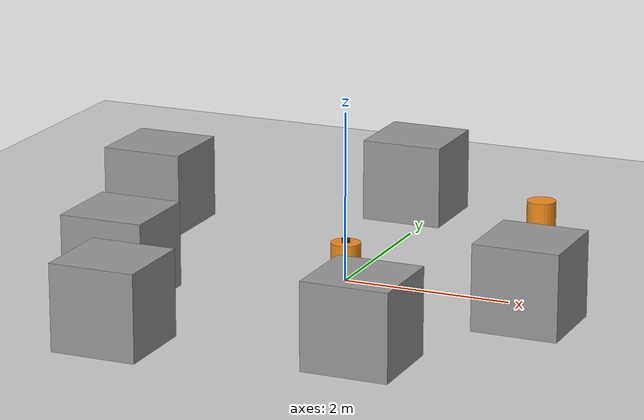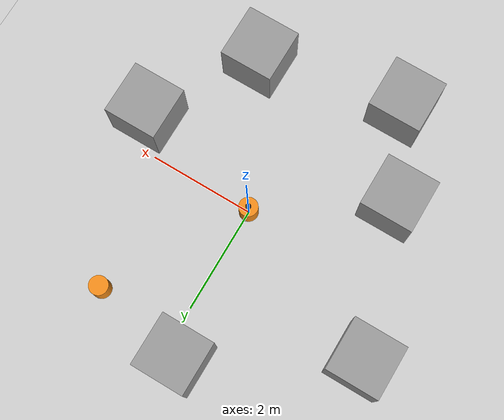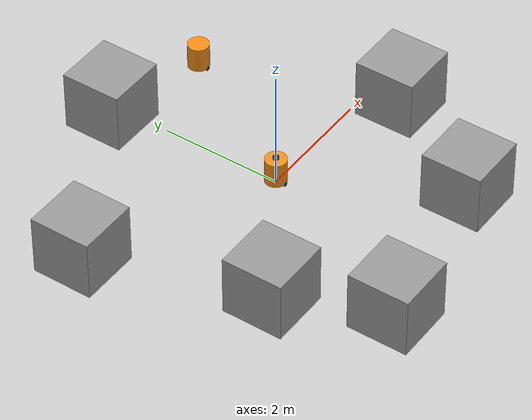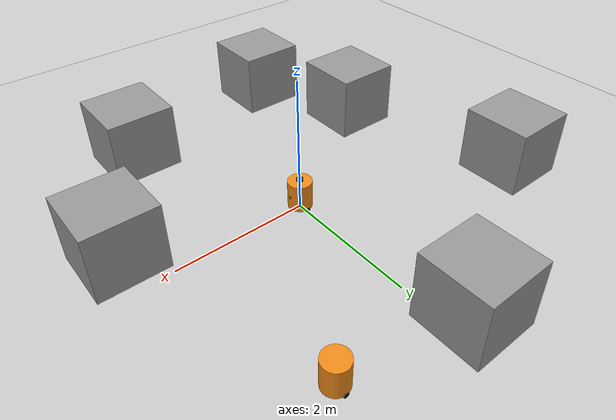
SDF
<sdf version="1.7">
 <world name="default">
  <light name="sun" type="directional">
   <pose>0 0 10 0 -0 0</pose>
   <diffuse>0.8 0.8 0.8 1</diffuse>
   <specular>0.2 0.2 0.2 1</specular>
   <attenuation>
    <range>1000</range>
    <constant>0.9</constant>
    <linear>0.01</linear>
    <quadratic>0.001</quadratic>
   </attenuation>
   <direction>-0.5 0.1 -0.9</direction>
   <spot><inner_angle>0</inner_angle><outer_angle>0</outer_angle><falloff>0</falloff></spot>
  </light>
  <model name="ground_plane">
   <static>1</static>
   <link name="link">
    <collision name="collision">
     <geometry><plane><normal>0 0 1</normal><size>100 100</size></plane></geometry>
     <surface>
      <contact><collide_bitmask>65535</collide_bitmask></contact>
      <friction><ode><mu>100</mu><mu2>50</mu2></ode></friction>
     </surface>
    </collision>
    <visual name="visual">
     <cast_shadows>0</cast_shadows>
     <geometry><plane><normal>0 0 1</normal><size>100 100</size></plane></geometry>
     <material>
      <script><uri>file://media/materials/scripts/gazebo.material</uri><name>Gazebo/Grey</name></script>
     </material>
    </visual>
   </link>
  </model>
  <gravity>0 0 -9.8</gravity>
  <magnetic_field>6e-06 2.3e-05 -4.2e-05</magnetic_field>
  <atmosphere type="adiabatic"/>
  <physics type="ode">
   <max_step_size>0.001</max_step_size>
   <real_time_factor>1</real_time_factor>
   <real_time_update_rate>1000</real_time_update_rate>
  </physics>
  <scene><ambient>0.4 0.4 0.4 1</ambient><background>0.7 0.7 0.7 1</background><shadows>1</shadows></scene>
  <spherical_coordinates>
   <surface_model>EARTH_WGS84</surface_model>
   <latitude_deg>0</latitude_deg>
   <longitude_deg>0</longitude_deg>
   <elevation>0</elevation>
   <heading_deg>0</heading_deg>
  </spherical_coordinates>
  <model name="tb2_1">
   <link name="base_link">
    <inertial>
     <pose>0 0 -0.02375 0 -0 0</pose>
     <mass>0.8</mass>
     <inertia>
      <ixx>0.0251287</ixx>
      <ixy>0</ixy>
      <ixz>0</ixz>
      <iyy>0.0280087</iyy>
      <iyz>0</iyz>
      <izz>0.0109652</izz>
     </inertia>
    </inertial>
    <collision name="base_link_fixed_joint_lump__chassis_collision">
     <geometry><cylinder><length>0.42</length><radius>0.177</radius></cylinder></geometry>
    </collision>
    <collision name="base_link_fixed_joint_lump__caster_wheel_backward_collision_1">
     <pose>-0.12 0 -0.21 0 -0 0</pose>
     <geometry><sphere><radius>0.04</radius></sphere></geometry>
     <surface><friction><ode><mu>0.001</mu><mu2>0.001</mu2></ode></friction></surface>
    </collision>
    <collision name="base_link_fixed_joint_lump__caster_wheel_forward_collision_2">
     <pose>0.12 0 -0.21 0 -0 0</pose>
     <geometry><sphere><radius>0.04</radius></sphere></geometry>
     <surface><friction><ode><mu>0.001</mu><mu2>0.001</mu2></ode></friction></surface>
    </collision>
    <collision name="base_link_fixed_joint_lump__laser_frame_collision_3">
     <pose>0 0 0.23 0 -0 0</pose>
     <geometry><cylinder><length>0.04</length><radius>0.05</radius></cylinder></geometry>
    </collision>
    <visual name="base_link_fixed_joint_lump__chassis_visual">
     <geometry><cylinder><length>0.42</length><radius>0.177</radius></cylinder></geometry>
     <material>
      <script><name>Gazebo/Orange</name><uri>file://media/materials/scripts/gazebo.material</uri></script>
     </material>
    </visual>
    <visual name="base_link_fixed_joint_lump__camera_link_visual_1">
     <pose>0.127 0 0 0 -0 0</pose>
     <geometry><box><size>0.1 0.04 0.04</size></box></geometry>
     <material>
      <script><name>Gazebo/Black</name><uri>file://media/materials/scripts/gazebo.material</uri></script>
     </material>
    </visual>
    <visual name="base_link_fixed_joint_lump__caster_wheel_backward_visual_2">
     <pose>-0.12 0 -0.21 0 -0 0</pose>
     <geometry><sphere><radius>0.04</radius></sphere></geometry>
     <material>
      <script><name>Gazebo/Black</name><uri>file://media/materials/scripts/gazebo.material</uri></script>
     </material>
    </visual>
    <visual name="base_link_fixed_joint_lump__caster_wheel_forward_visual_3">
     <pose>0.12 0 -0.21 0 -0 0</pose>
     <geometry><sphere><radius>0.04</radius></sphere></geometry>
     <material>
      <script><name>Gazebo/Black</name><uri>file://media/materials/scripts/gazebo.material</uri></script>
     </material>
    </visual>
    <visual name="base_link_fixed_joint_lump__laser_frame_visual_4">
     <pose>0 0 0.23 0 -0 0</pose>
     <geometry><cylinder><length>0.04</length><radius>0.05</radius></cylinder></geometry>
     <material>
      <script><name>Gazebo/Black</name><uri>file://media/materials/scripts/gazebo.material</uri></script>
     </material>
    </visual>
    <sensor name="camera" type="depth">
     <visualize>1</visualize>
     <update_rate>10</update_rate>
     <camera>
      <horizontal_fov>1.089</horizontal_fov>
      <image><format>B8G8R8</format><width>640</width><height>480</height></image>
      <clip><near>0.05</near><far>8</far></clip>
     </camera>
     <plugin name="camera_controller" filename="libgazebo_ros_camera.so">
      <frame_name>camera_link_optical</frame_name>
      <min_depth>0.1</min_depth>
      <max_depth>100.0</max_depth>
     </plugin>
     <pose>0.127 0 0 0 -0 0</pose>
    </sensor>
    <sensor name="laser" type="ray">
     <visualize>0</visualize>
     <update_rate>10</update_rate>
     <ray>
      <scan>
       <horizontal>
        <samples>360</samples>
        <min_angle>-3.14</min_angle>
        <max_angle>3.14</max_angle>
        <resolution>1</resolution>
       </horizontal>
       <vertical><samples>1</samples><min_angle>0</min_angle><max_angle>0</max_angle></vertical>
      </scan>
      <range><min>0.3</min><max>12</max></range>
     </ray>
     <plugin name="laser_controller" filename="libgazebo_ros_ray_sensor.so">
      <ros><argument>~/out:=scan</argument></ros>
      <output_type>sensor_msgs/LaserScan</output_type>
      <frame_name>laser_frame</frame_name>
     </plugin>
     <pose>0 0 0.23 0 -0 0</pose>
    </sensor>
   </link>
   <joint name="left_wheel_joint" type="revolute">
    <pose relative_to="base_link">0 0.157 -0.21 -1.5708 0 0</pose>
    <parent>base_link</parent>
    <child>left_wheel</child>
    <axis>
     <xyz>0 0 1</xyz>
     <limit><lower>-1e+16</lower><upper>1e+16</upper></limit>
     <dynamics><spring_reference>0</spring_reference><spring_stiffness>0</spring_stiffness></dynamics>
    </axis>
   </joint>
   <link name="left_wheel">
    <pose relative_to="left_wheel_joint">0 0 0 0 -0 0</pose>
    <inertial>
     <mass>0.1</mass>
     <inertia>
      <ixx>5.33333e-05</ixx>
      <ixy>0</ixy>
      <ixz>0</ixz>
      <iyy>5.33333e-05</iyy>
      <iyz>0</iyz>
      <izz>8e-05</izz>
     </inertia>
    </inertial>
    <collision name="left_wheel_collision">
     <geometry><cylinder><length>0.04</length><radius>0.04</radius></cylinder></geometry>
    </collision>
    <visual name="left_wheel_visual">
     <geometry><cylinder><length>0.04</length><radius>0.04</radius></cylinder></geometry>
     <material>
      <script><name>Gazebo/Black</name><uri>file://media/materials/scripts/gazebo.material</uri></script>
     </material>
    </visual>
   </link>
   <joint name="right_wheel_joint" type="revolute">
    <pose relative_to="base_link">0 -0.157 -0.21 1.5708 -0 0</pose>
    <parent>base_link</parent>
    <child>right_wheel</child>
    <axis>
     <xyz>0 0 -1</xyz>
     <limit><lower>-1e+16</lower><upper>1e+16</upper></limit>
     <dynamics><spring_reference>0</spring_reference><spring_stiffness>0</spring_stiffness></dynamics>
    </axis>
   </joint>
   <link name="right_wheel">
    <pose relative_to="right_wheel_joint">0 0 0 0 -0 0</pose>
    <inertial>
     <mass>0.1</mass>
     <inertia>
      <ixx>5.33333e-05</ixx>
      <ixy>0</ixy>
      <ixz>0</ixz>
      <iyy>5.33333e-05</iyy>
      <iyz>0</iyz>
      <izz>8e-05</izz>
     </inertia>
    </inertial>
    <collision name="right_wheel_collision">
     <geometry><cylinder><length>0.04</length><radius>0.04</radius></cylinder></geometry>
    </collision>
    <visual name="right_wheel_visual">
     <geometry><cylinder><length>0.04</length><radius>0.04</radius></cylinder></geometry>
     <material>
      <script><name>Gazebo/Black</name><uri>file://media/materials/scripts/gazebo.material</uri></script>
     </material>
    </visual>
   </link>
   <plugin name="diff_drive_master" filename="libgazebo_ros_diff_drive.so">
    <ros><namespace>/master</namespace></ros>
    <left_joint>left_wheel_joint</left_joint>
    <right_joint>right_wheel_joint</right_joint>
    <wheel_separation>0.314</wheel_separation>
    <wheel_diameter>0.08</wheel_diameter>
    <max_wheel_torque>200</max_wheel_torque>
    <max_wheel_acceleration>10.0</max_wheel_acceleration>
    <odometry_frame>odom</odometry_frame>
    <robot_base_frame>base_link</robot_base_frame>
    <publish_odom>1</publish_odom>
    <publish_odom_tf>1</publish_odom_tf>
    <publish_wheel_tf>1</publish_wheel_tf>
   </plugin>
   <frame name="base_footprint_joint" attached_to="base_link"/>
   <frame name="base_footprint" attached_to="base_footprint_joint"/>
   <frame name="camera_optical_joint" attached_to="camera_link"><pose>0 0 0 -1.5708 -0 -1.5708</pose></frame>
   <frame name="camera_link_optical" attached_to="camera_optical_joint"/>
   <frame name="camera_joint" attached_to="chassis"><pose>0.127 0 0 0 -0 0</pose></frame>
   <frame name="camera_link" attached_to="camera_joint"/>
   <frame name="caster_wheel_backward_joint" attached_to="chassis"><pose>-0.12 0 -0.21 0 -0 0</pose></frame>
   <frame name="caster_wheel_backward" attached_to="caster_wheel_backward_joint"/>
   <frame name="caster_wheel_forward_joint" attached_to="chassis"><pose>0.12 0 -0.21 0 -0 0</pose></frame>
   <frame name="caster_wheel_forward" attached_to="caster_wheel_forward_joint"/>
   <frame name="laser_joint" attached_to="chassis"><pose>0 0 0.23 0 -0 0</pose></frame>
   <frame name="laser_frame" attached_to="laser_joint"/>
   <frame name="chassis_joint" attached_to="base_link"/>
   <frame name="chassis" attached_to="chassis_joint"/>
   <pose>0.000745 0.000119 0.25 0 -0 4.7e-05</pose>
  </model>
  <model name="tb2_2">
   <link name="base_link_slave">
    <inertial>
     <pose>0 0 -0.06 0 -0 0</pose>
     <mass>0.7</mass>
     <inertia>
      <ixx>0.0176941</ixx>
      <ixy>0</ixy>
      <ixz>0</ixz>
      <iyy>0.0205741</iyy>
      <iyz>0</iyz>
      <izz>0.0108402</izz>
     </inertia>
    </inertial>
    <collision name="base_link_slave_fixed_joint_lump__chassis_slave_collision">
     <geometry><cylinder><length>0.42</length><radius>0.177</radius></cylinder></geometry>
    </collision>
    <collision name="base_link_slave_fixed_joint_lump__caster_wheel_backward_slave_collision_1">
     <pose>-0.12 0 -0.21 0 -0 0</pose>
     <geometry><sphere><radius>0.04</radius></sphere></geometry>
     <surface><friction><ode><mu>0.001</mu><mu2>0.001</mu2></ode></friction></surface>
    </collision>
    <collision name="base_link_slave_fixed_joint_lump__caster_wheel_forward_slave_collision_2">
     <pose>0.12 0 -0.21 0 -0 0</pose>
     <geometry><sphere><radius>0.04</radius></sphere></geometry>
     <surface><friction><ode><mu>0.001</mu><mu2>0.001</mu2></ode></friction></surface>
    </collision>
    <visual name="base_link_slave_fixed_joint_lump__chassis_slave_visual">
     <geometry><cylinder><length>0.42</length><radius>0.177</radius></cylinder></geometry>
     <material>
      <script><name>Gazebo/Orange</name><uri>file://media/materials/scripts/gazebo.material</uri></script>
     </material>
    </visual>
    <visual name="base_link_slave_fixed_joint_lump__caster_wheel_backward_slave_visual_1">
     <pose>-0.12 0 -0.21 0 -0 0</pose>
     <geometry><sphere><radius>0.04</radius></sphere></geometry>
     <material>
      <script><name>Gazebo/Black</name><uri>file://media/materials/scripts/gazebo.material</uri></script>
     </material>
    </visual>
    <visual name="base_link_slave_fixed_joint_lump__caster_wheel_forward_slave_visual_2">
     <pose>0.12 0 -0.21 0 -0 0</pose>
     <geometry><sphere><radius>0.04</radius></sphere></geometry>
     <material>
      <script><name>Gazebo/Black</name><uri>file://media/materials/scripts/gazebo.material</uri></script>
     </material>
    </visual>
   </link>
   <joint name="left_wheel_joint_slave" type="revolute">
    <pose relative_to="base_link_slave">0 0.157 -0.21 -1.5708 0 0</pose>
    <parent>base_link_slave</parent>
    <child>left_wheel_slave</child>
    <axis>
     <xyz>0 0 1</xyz>
     <limit><lower>-1e+16</lower><upper>1e+16</upper></limit>
     <dynamics><spring_reference>0</spring_reference><spring_stiffness>0</spring_stiffness></dynamics>
    </axis>
   </joint>
   <link name="left_wheel_slave">
    <pose relative_to="left_wheel_joint_slave">0 0 0 0 -0 0</pose>
    <inertial>
     <mass>0.1</mass>
     <inertia>
      <ixx>5.33333e-05</ixx>
      <ixy>0</ixy>
      <ixz>0</ixz>
      <iyy>5.33333e-05</iyy>
      <iyz>0</iyz>
      <izz>8e-05</izz>
     </inertia>
    </inertial>
    <collision name="left_wheel_slave_collision">
     <geometry><cylinder><length>0.04</length><radius>0.04</radius></cylinder></geometry>
    </collision>
    <visual name="left_wheel_slave_visual">
     <geometry><cylinder><length>0.04</length><radius>0.04</radius></cylinder></geometry>
     <material>
      <script><name>Gazebo/Black</name><uri>file://media/materials/scripts/gazebo.material</uri></script>
     </material>
    </visual>
   </link>
   <joint name="right_wheel_joint_slave" type="revolute">
    <pose relative_to="base_link_slave">0 -0.157 -0.21 1.5708 -0 0</pose>
    <parent>base_link_slave</parent>
    <child>right_wheel_slave</child>
    <axis>
     <xyz>0 0 -1</xyz>
     <limit><lower>-1e+16</lower><upper>1e+16</upper></limit>
     <dynamics><spring_reference>0</spring_reference><spring_stiffness>0</spring_stiffness></dynamics>
    </axis>
   </joint>
   <link name="right_wheel_slave">
    <pose relative_to="right_wheel_joint_slave">0 0 0 0 -0 0</pose>
    <inertial>
     <mass>0.1</mass>
     <inertia>
      <ixx>5.33333e-05</ixx>
      <ixy>0</ixy>
      <ixz>0</ixz>
      <iyy>5.33333e-05</iyy>
      <iyz>0</iyz>
      <izz>8e-05</izz>
     </inertia>
    </inertial>
    <collision name="right_wheel_slave_collision">
     <geometry><cylinder><length>0.04</length><radius>0.04</radius></cylinder></geometry>
    </collision>
    <visual name="right_wheel_slave_visual">
     <geometry><cylinder><length>0.04</length><radius>0.04</radius></cylinder></geometry>
     <material>
      <script><name>Gazebo/Black</name><uri>file://media/materials/scripts/gazebo.material</uri></script>
     </material>
    </visual>
   </link>
   <plugin name="diff_drive_slave" filename="libgazebo_ros_diff_drive.so">
    <ros><namespace>/slave</namespace></ros>
    <left_joint>left_wheel_joint_slave</left_joint>
    <right_joint>right_wheel_joint_slave</right_joint>
    <wheel_separation>0.314</wheel_separation>
    <wheel_diameter>0.08</wheel_diameter>
    <max_wheel_torque>200</max_wheel_torque>
    <max_wheel_acceleration>10.0</max_wheel_acceleration>
    <odometry_frame>odom_slave</odometry_frame>
    <robot_base_frame>base_link_slave</robot_base_frame>
    <publish_odom>1</publish_odom>
    <publish_odom_tf>1</publish_odom_tf>
    <publish_wheel_tf>1</publish_wheel_tf>
   </plugin>
   <frame name="base_footprint_joint_slave" attached_to="base_link_slave"/>
   <frame name="base_footprint_slave" attached_to="base_footprint_joint_slave"/>
   <frame name="caster_wheel_backward_joint_slave" attached_to="chassis_slave">
    <pose>-0.12 0 -0.21 0 -0 0</pose>
   </frame>
   <frame name="caster_wheel_backward_slave" attached_to="caster_wheel_backward_joint_slave"/>
   <frame name="caster_wheel_forward_joint_slave" attached_to="chassis_slave">
    <pose>0.12 0 -0.21 0 -0 0</pose>
   </frame>
   <frame name="caster_wheel_forward_slave" attached_to="caster_wheel_forward_joint_slave"/>
   <frame name="chassis_joint_slave" attached_to="base_link_slave"/>
   <frame name="chassis_slave" attached_to="chassis_joint_slave"/>
   <pose>1.50048 2.50009 0.25 0 -0 -3.1e-05</pose>
  </model>
  <model name="unit_box">
   <pose>2.46201 -0.606968 0.499995 -1e-05 -0 -0</pose>
   <link name="link">
    <inertial>
     <mass>1</mass>
     <inertia>
      <ixx>0.166667</ixx>
      <ixy>0</ixy>
      <ixz>0</ixz>
      <iyy>0.166667</iyy>
      <iyz>0</iyz>
      <izz>0.166667</izz>
     </inertia>
    </inertial>
    <collision name="collision"><geometry><box><size>1 1 1</size></box></geometry></collision>
    <visual name="visual">
     <geometry><box><size>1 1 1</size></box></geometry>
     <material>
      <script><name>Gazebo/Grey</name><uri>file://media/materials/scripts/gazebo.material</uri></script>
     </material>
    </visual>
   </link>
  </model>
  <model name="unit_box_0">
   <pose>1.27948 -2.54037 0.499995 0 1e-05 0</pose>
   <link name="link">
    <inertial>
     <mass>1</mass>
     <inertia>
      <ixx>0.166667</ixx>
      <ixy>0</ixy>
      <ixz>0</ixz>
      <iyy>0.166667</iyy>
      <iyz>0</iyz>
      <izz>0.166667</izz>
     </inertia>
    </inertial>
    <collision name="collision"><geometry><box><size>1 1 1</size></box></geometry></collision>
    <visual name="visual">
     <geometry><box><size>1 1 1</size></box></geometry>
     <material>
      <script><name>Gazebo/Grey</name><uri>file://media/materials/scripts/gazebo.material</uri></script>
     </material>
    </visual>
   </link>
  </model>
  <model name="unit_box_1">
   <pose>-2.15824 -1.42715 0.499995 -1e-05 -0 -0</pose>
   <link name="link">
    <inertial>
     <mass>1</mass>
     <inertia>
      <ixx>0.166667</ixx>
      <ixy>0</ixy>
      <ixz>0</ixz>
      <iyy>0.166667</iyy>
      <iyz>0</iyz>
      <izz>0.166667</izz>
     </inertia>
    </inertial>
    <collision name="collision"><geometry><box><size>1 1 1</size></box></geometry></collision>
    <visual name="visual">
     <geometry><box><size>1 1 1</size></box></geometry>
     <material>
      <script><name>Gazebo/Grey</name><uri>file://media/materials/scripts/gazebo.material</uri></script>
     </material>
    </visual>
   </link>
  </model>
  <model name="unit_box_2">
   <pose>-1.41475 -3.04669 0.499995 0 1e-05 0</pose>
   <link name="link">
    <inertial>
     <mass>1</mass>
     <inertia>
      <ixx>0.166667</ixx>
      <ixy>0</ixy>
      <ixz>0</ixz>
      <iyy>0.166667</iyy>
      <iyz>0</iyz>
      <izz>0.166667</izz>
     </inertia>
    </inertial>
    <collision name="collision"><geometry><box><size>1 1 1</size></box></geometry></collision>
    <visual name="visual">
     <geometry><box><size>1 1 1</size></box></geometry>
     <material>
      <script><name>Gazebo/Grey</name><uri>file://media/materials/scripts/gazebo.material</uri></script>
     </material>
    </visual>
   </link>
  </model>
  <model name="unit_box_3">
   <pose>-3.03284 1.28198 0.499995 -1e-05 -0 0</pose>
   <link name="link">
    <inertial>
     <mass>1</mass>
     <inertia>
      <ixx>0.166667</ixx>
      <ixy>0</ixy>
      <ixz>0</ixz>
      <iyy>0.166667</iyy>
      <iyz>0</iyz>
      <izz>0.166667</izz>
     </inertia>
    </inertial>
    <collision name="collision"><geometry><box><size>1 1 1</size></box></geometry></collision>
    <visual name="visual">
     <geometry><box><size>1 1 1</size></box></geometry>
     <material>
      <script><name>Gazebo/Grey</name><uri>file://media/materials/scripts/gazebo.material</uri></script>
     </material>
    </visual>
   </link>
  </model>
  <model name="unit_box_4">
   <pose>-0.269501 2.84187 0.5 0 -0 0</pose>
   <link name="link">
    <inertial>
     <mass>1</mass>
     <inertia>
      <ixx>0.166667</ixx>
      <ixy>0</ixy>
      <ixz>0</ixz>
      <iyy>0.166667</iyy>
      <iyz>0</iyz>
      <izz>0.166667</izz>
     </inertia>
    </inertial>
    <collision name="collision"><geometry><box><size>1 1 1</size></box></geometry></collision>
    <visual name="visual">
     <geometry><box><size>1 1 1</size></box></geometry>
     <material>
      <script><name>Gazebo/Grey</name><uri>file://media/materials/scripts/gazebo.material</uri></script>
     </material>
    </visual>
   </link>
  </model>
 </world>
</sdf>
